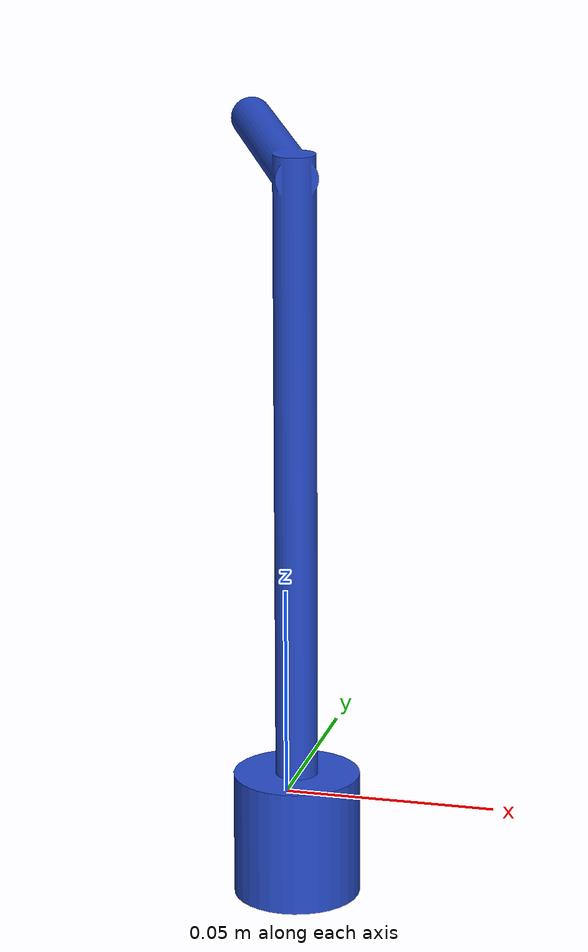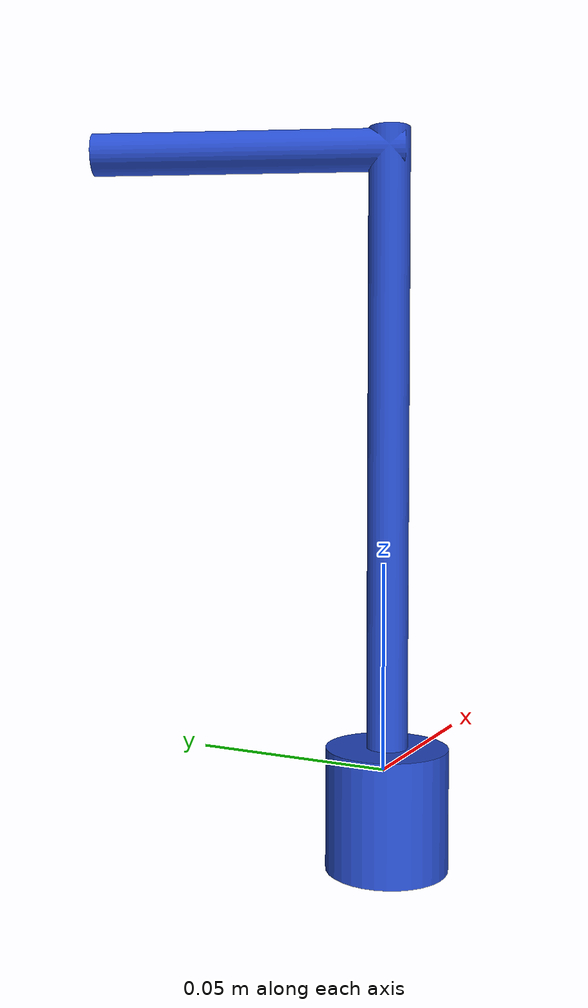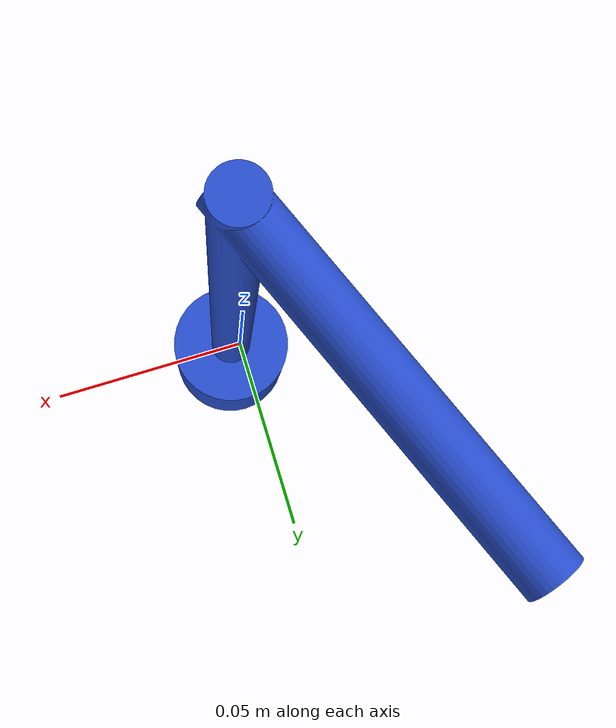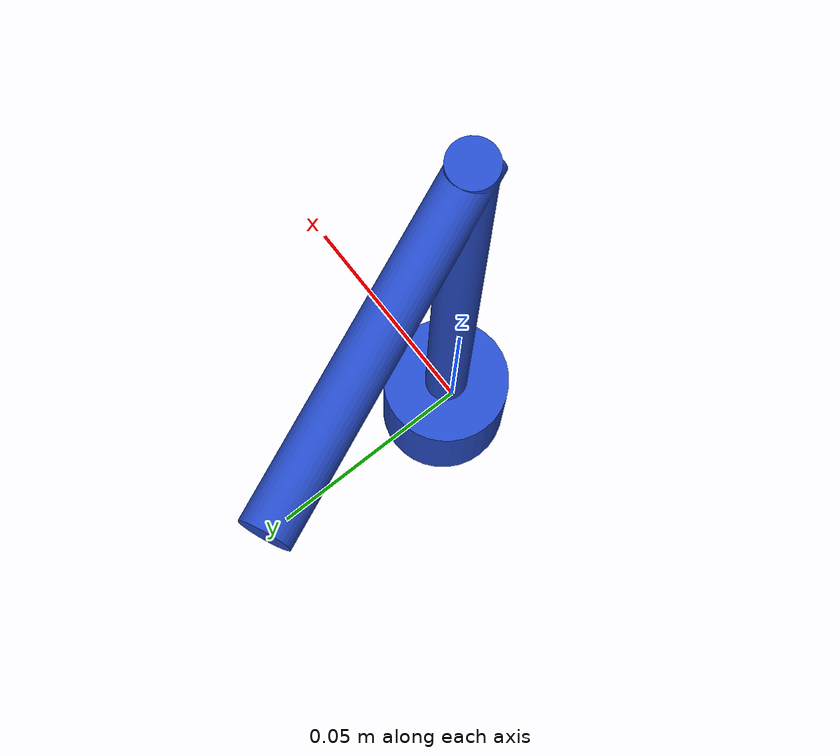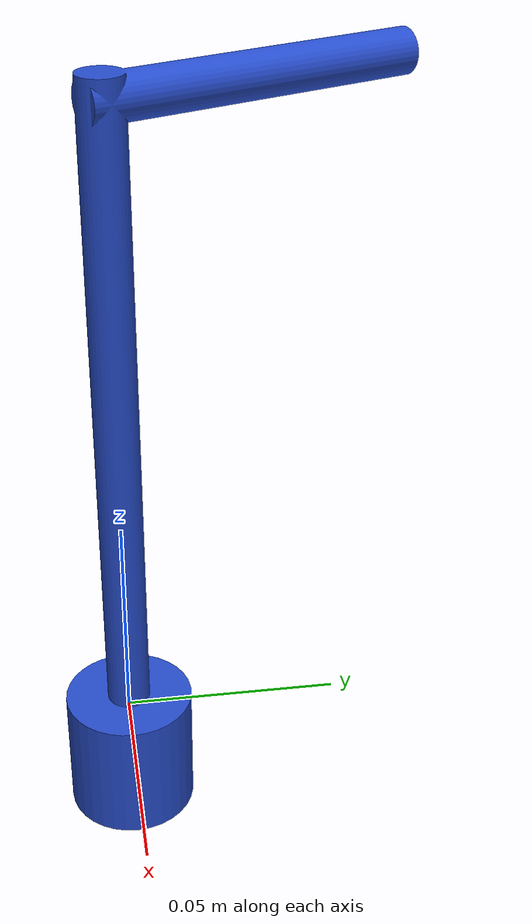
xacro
<?xml version="1.0"?>
<robot xmlns:xacro="http://ros.org/wiki/xacro" name="simple_tool">
  <link name="my_tool">
    <inertial>
      <origin xyz="0 0 0" />
      <mass value="1.0" />
      <inertia  ixx="0.0" ixy="0.0"  ixz="0.0"  iyy="0.0"  iyz="0.0"  izz="0.0" />
    </inertial>
    <visual>
      <origin xyz="0.0025 0 -0.01" rpy="0 0 0.4"/>
      <geometry>
        <mesh filename="package://affordance_experiment/models/l_stick.dae" />
      </geometry>
    </visual>
    <collision>
      <origin xyz="0.0025 0 -0.01" rpy="0 0 0.4"/>
      <geometry>
        <mesh filename="package://affordance_experiment/models/l_stick.dae" />
      </geometry>
    </collision>
  </link>
  <gazebo reference="my_tool">
    <material>Gazebo/Blue</material>
  </gazebo>
</robot>
